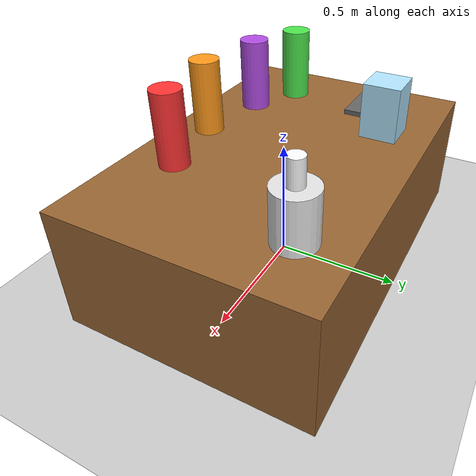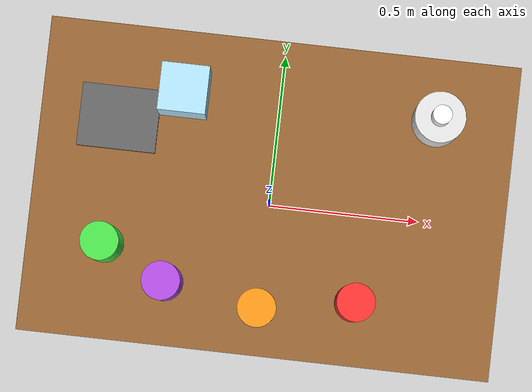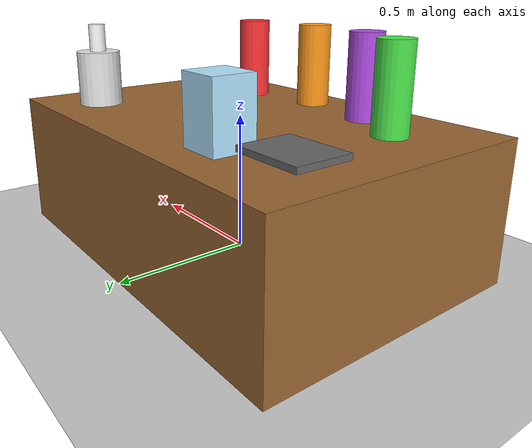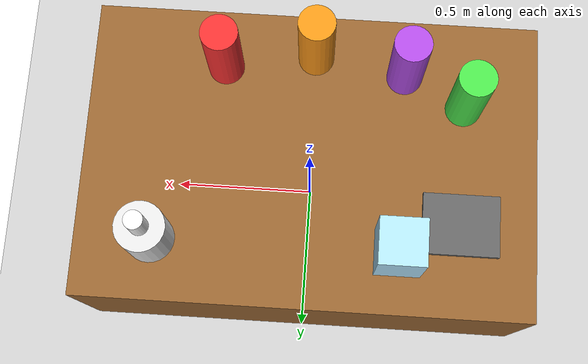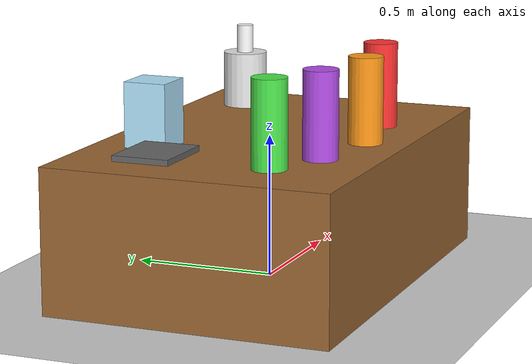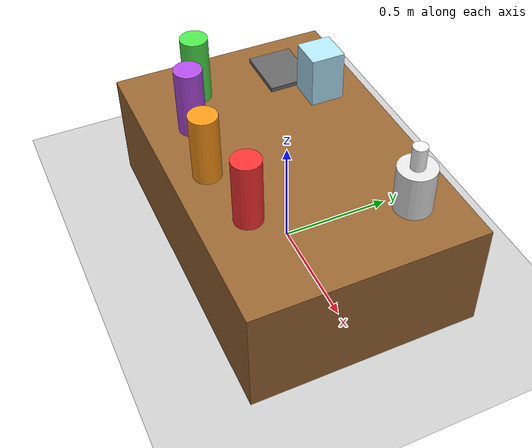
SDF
<?xml version="1.0"?>
<sdf version="1.6">
  <world name="barista_world">

    <!-- Lighting -->
    <include>
      <uri>model://sun</uri>
    </include>

    <!-- Ground Plane -->
    <include>
      <uri>model://ground_plane</uri>
    </include>

    <!-- Physics -->
    <physics type="ode">
      <max_step_size>0.001</max_step_size>
      <real_time_factor>1</real_time_factor>
      <real_time_update_rate>1000</real_time_update_rate>
    </physics>

    <!-- Barista Counter/Table -->
    <model name="barista_table">
      <static>true</static>
      <pose>0 0 0.25 0 0 0</pose>
      <link name="table_link">
        <collision name="collision">
          <geometry>
            <box>
              <size>1.5 1.0 0.5</size>
            </box>
          </geometry>
        </collision>
        <visual name="visual">
          <geometry>
            <box>
              <size>1.5 1.0 0.5</size>
            </box>
          </geometry>
          <material>
            <ambient>0.5 0.3 0.1 1</ambient>
            <diffuse>0.6 0.4 0.2 1</diffuse>
          </material>
        </visual>
      </link>
    </model>

    <!-- Cup Dispenser Station -->
    <model name="cup_dispenser">
      <static>true</static>
      <pose>0.5 0.3 0.6 0 0 0</pose>
      <link name="dispenser_link">
        <collision name="collision">
          <geometry>
            <cylinder>
              <radius>0.08</radius>
              <length>0.2</length>
            </cylinder>
          </geometry>
        </collision>
        <visual name="visual">
          <geometry>
            <cylinder>
              <radius>0.08</radius>
              <length>0.2</length>
            </cylinder>
          </geometry>
          <material>
            <ambient>0.8 0.8 0.8 1</ambient>
            <diffuse>0.9 0.9 0.9 1</diffuse>
          </material>
        </visual>
      </link>
    </model>

    <!-- Ice Dispenser Station -->
    <model name="ice_dispenser">
      <static>true</static>
      <pose>-0.3 0.3 0.6 0 0 0</pose>
      <link name="ice_link">
        <collision name="collision">
          <geometry>
            <box>
              <size>0.15 0.15 0.25</size>
            </box>
          </geometry>
        </collision>
        <visual name="visual">
          <geometry>
            <box>
              <size>0.15 0.15 0.25</size>
            </box>
          </geometry>
          <material>
            <ambient>0.6 0.8 1.0 1</ambient>
            <diffuse>0.7 0.9 1.0 1</diffuse>
          </material>
        </visual>
      </link>
    </model>

    <!-- Drink 1 Dispenser (Red) -->
    <model name="drink1_dispenser">
      <static>true</static>
      <pose>0.3 -0.3 0.65 0 0 0</pose>
      <link name="drink1_link">
        <collision name="collision">
          <geometry>
            <cylinder>
              <radius>0.06</radius>
              <length>0.3</length>
            </cylinder>
          </geometry>
        </collision>
        <visual name="visual">
          <geometry>
            <cylinder>
              <radius>0.06</radius>
              <length>0.3</length>
            </cylinder>
          </geometry>
          <material>
            <ambient>0.8 0.1 0.1 1</ambient>
            <diffuse>1.0 0.2 0.2 1</diffuse>
          </material>
        </visual>
      </link>
    </model>

    <!-- Drink 2 Dispenser (Orange) -->
    <model name="drink2_dispenser">
      <static>true</static>
      <pose>0.0 -0.35 0.65 0 0 0</pose>
      <link name="drink2_link">
        <collision name="collision">
          <geometry>
            <cylinder>
              <radius>0.06</radius>
              <length>0.3</length>
            </cylinder>
          </geometry>
        </collision>
        <visual name="visual">
          <geometry>
            <cylinder>
              <radius>0.06</radius>
              <length>0.3</length>
            </cylinder>
          </geometry>
          <material>
            <ambient>1.0 0.5 0.0 1</ambient>
            <diffuse>1.0 0.6 0.1 1</diffuse>
          </material>
        </visual>
      </link>
    </model>

    <!-- Drink 3 Dispenser (Purple) -->
    <model name="drink3_dispenser">
      <static>true</static>
      <pose>-0.3 -0.3 0.65 0 0 0</pose>
      <link name="drink3_link">
        <collision name="collision">
          <geometry>
            <cylinder>
              <radius>0.06</radius>
              <length>0.3</length>
            </cylinder>
          </geometry>
        </collision>
        <visual name="visual">
          <geometry>
            <cylinder>
              <radius>0.06</radius>
              <length>0.3</length>
            </cylinder>
          </geometry>
          <material>
            <ambient>0.6 0.2 0.8 1</ambient>
            <diffuse>0.7 0.3 0.9 1</diffuse>
          </material>
        </visual>
      </link>
    </model>

    <!-- Drink 4 Dispenser (Green) -->
    <model name="drink4_dispenser">
      <static>true</static>
      <pose>-0.5 -0.2 0.65 0 0 0</pose>
      <link name="drink4_link">
        <collision name="collision">
          <geometry>
            <cylinder>
              <radius>0.06</radius>
              <length>0.3</length>
            </cylinder>
          </geometry>
        </collision>
        <visual name="visual">
          <geometry>
            <cylinder>
              <radius>0.06</radius>
              <length>0.3</length>
            </cylinder>
          </geometry>
          <material>
            <ambient>0.2 0.8 0.2 1</ambient>
            <diffuse>0.3 0.9 0.3 1</diffuse>
          </material>
        </visual>
      </link>
    </model>

    <!-- Service Point (Tray) -->
    <model name="service_tray">
      <static>true</static>
      <pose>-0.5 0.2 0.52 0 0 0</pose>
      <link name="tray_link">
        <collision name="collision">
          <geometry>
            <box>
              <size>0.25 0.20 0.02</size>
            </box>
          </geometry>
        </collision>
        <visual name="visual">
          <geometry>
            <box>
              <size>0.25 0.20 0.02</size>
            </box>
          </geometry>
          <material>
            <ambient>0.3 0.3 0.3 1</ambient>
            <diffuse>0.4 0.4 0.4 1</diffuse>
          </material>
        </visual>
      </link>
    </model>

    <!-- Sample Cups -->
    <model name="cup1">
      <static>true</static>
      <pose>0.5 0.3 0.75 0 0 0</pose>
      <link name="cup_link">
        <visual name="visual">
          <geometry>
            <cylinder>
              <radius>0.03</radius>
              <length>0.1</length>
            </cylinder>
          </geometry>
          <material>
            <ambient>1.0 1.0 1.0 1</ambient>
            <diffuse>1.0 1.0 1.0 1</diffuse>
          </material>
        </visual>
      </link>
    </model>

  </world>
</sdf>
